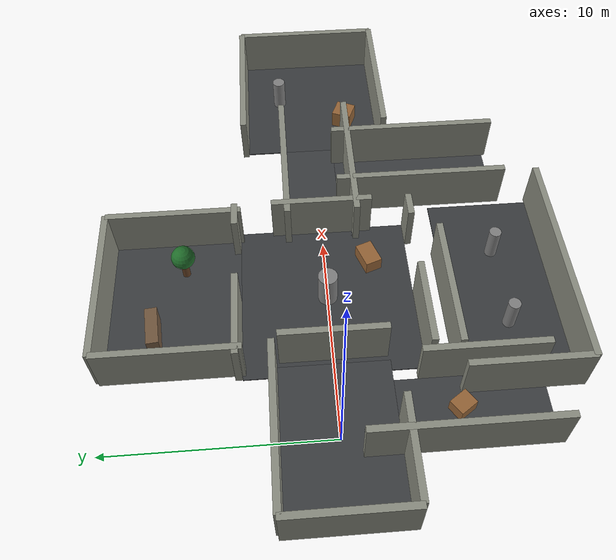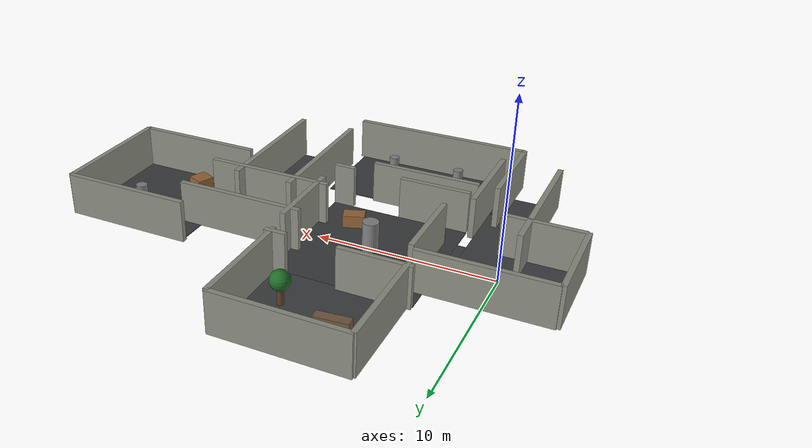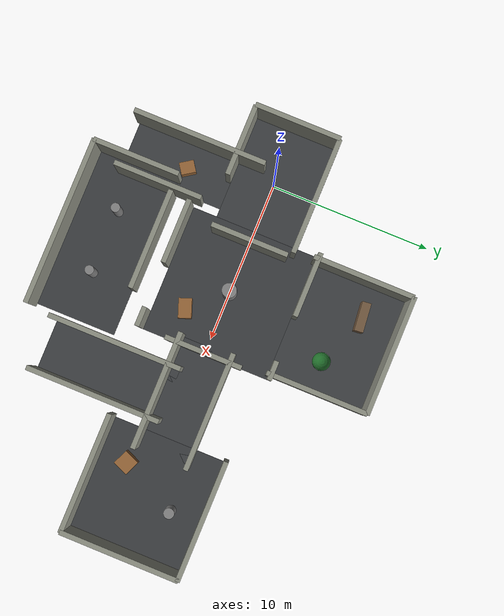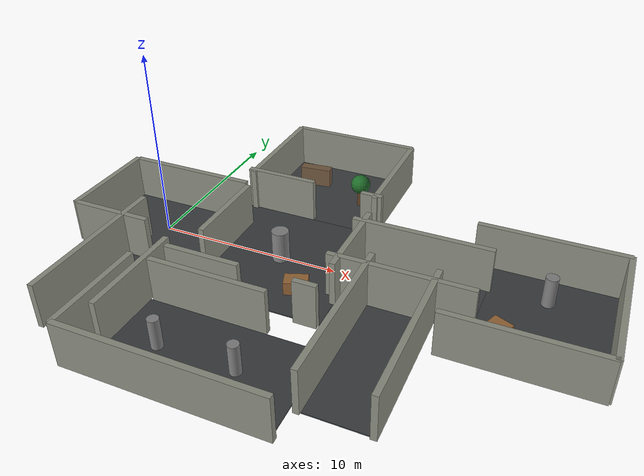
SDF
<?xml version="1.0" ?>
<sdf version="1.6">
  <world name="maps12_general_slam_benchmark">
    <physics name="default_physics" type="ode">
      <max_step_size>0.004</max_step_size>
      <real_time_factor>1.0</real_time_factor>
      <real_time_update_rate>250</real_time_update_rate>
    </physics>

    <scene>
      <ambient>0.56 0.58 0.60 1</ambient>
      <background>0.76 0.80 0.84 1</background>
      <shadows>true</shadows>
    </scene>

    <light name="sun" type="directional">
      <pose>0 0 14 0 0 0</pose>
      <diffuse>0.95 0.92 0.84 1</diffuse>
      <specular>0.18 0.18 0.18 1</specular>
      <direction>-0.35 0.25 -1</direction>
    </light>

    <model name="maps12_loop_room_corridor_layout">
      <static>true</static>

      <link name="entry_start_floor"><pose>0 0 -0.03 0 0 0</pose><collision name="c"><geometry><box><size>7 5 0.06</size></box></geometry></collision><visual name="v"><geometry><box><size>7 5 0.06</size></box></geometry><material><ambient>0.18 0.19 0.20 1</ambient><diffuse>0.23 0.24 0.25 1</diffuse></material></visual></link>
      <link name="central_atrium_floor"><pose>7 0 -0.03 0 0 0</pose><collision name="c"><geometry><box><size>8 8 0.06</size></box></geometry></collision><visual name="v"><geometry><box><size>8 8 0.06</size></box></geometry><material><ambient>0.17 0.18 0.19 1</ambient><diffuse>0.22 0.23 0.24 1</diffuse></material></visual></link>
      <link name="north_room_floor"><pose>7 7 -0.03 0 0 0</pose><collision name="c"><geometry><box><size>7 6 0.06</size></box></geometry></collision><visual name="v"><geometry><box><size>7 6 0.06</size></box></geometry><material><ambient>0.18 0.19 0.20 1</ambient><diffuse>0.23 0.24 0.25 1</diffuse></material></visual></link>
      <link name="east_corridor_floor"><pose>14 0 -0.03 0 0 0</pose><collision name="c"><geometry><box><size>7 3 0.06</size></box></geometry></collision><visual name="v"><geometry><box><size>7 3 0.06</size></box></geometry><material><ambient>0.18 0.19 0.20 1</ambient><diffuse>0.23 0.24 0.25 1</diffuse></material></visual></link>
      <link name="east_room_floor"><pose>20 0 -0.03 0 0 0</pose><collision name="c"><geometry><box><size>7 7 0.06</size></box></geometry></collision><visual name="v"><geometry><box><size>7 7 0.06</size></box></geometry><material><ambient>0.17 0.18 0.19 1</ambient><diffuse>0.22 0.23 0.24 1</diffuse></material></visual></link>
      <link name="south_corridor_floor"><pose>14 -5 -0.03 0 0 0</pose><collision name="c"><geometry><box><size>3 8 0.06</size></box></geometry></collision><visual name="v"><geometry><box><size>3 8 0.06</size></box></geometry><material><ambient>0.18 0.19 0.20 1</ambient><diffuse>0.23 0.24 0.25 1</diffuse></material></visual></link>
      <link name="south_room_floor"><pose>7 -8 -0.03 0 0 0</pose><collision name="c"><geometry><box><size>10 5 0.06</size></box></geometry></collision><visual name="v"><geometry><box><size>10 5 0.06</size></box></geometry><material><ambient>0.17 0.18 0.19 1</ambient><diffuse>0.22 0.23 0.24 1</diffuse></material></visual></link>
      <link name="west_return_corridor_floor"><pose>1 -5 -0.03 0 0 0</pose><collision name="c"><geometry><box><size>3 8 0.06</size></box></geometry></collision><visual name="v"><geometry><box><size>3 8 0.06</size></box></geometry><material><ambient>0.18 0.19 0.20 1</ambient><diffuse>0.23 0.24 0.25 1</diffuse></material></visual></link>

      <link name="outer_wall_west"><pose>-3.65 0 1.2 0 0 0</pose><collision name="c"><geometry><box><size>0.3 5.4 2.4</size></box></geometry></collision><visual name="v"><geometry><box><size>0.3 5.4 2.4</size></box></geometry><material><ambient>0.42 0.43 0.40 1</ambient><diffuse>0.54 0.55 0.50 1</diffuse></material></visual></link>
      <link name="outer_wall_entry_north"><pose>0 2.65 1.2 0 0 0</pose><collision name="c"><geometry><box><size>7.2 0.3 2.4</size></box></geometry></collision><visual name="v"><geometry><box><size>7.2 0.3 2.4</size></box></geometry><material><ambient>0.42 0.43 0.40 1</ambient><diffuse>0.54 0.55 0.50 1</diffuse></material></visual></link>
      <link name="outer_wall_entry_south_split"><pose>-1.4 -2.65 1.2 0 0 0</pose><collision name="c"><geometry><box><size>4.4 0.3 2.4</size></box></geometry></collision><visual name="v"><geometry><box><size>4.4 0.3 2.4</size></box></geometry><material><ambient>0.42 0.43 0.40 1</ambient><diffuse>0.54 0.55 0.50 1</diffuse></material></visual></link>

      <link name="atrium_wall_north_west"><pose>5.0 4.15 1.2 0 0 0</pose><collision name="c"><geometry><box><size>4.0 0.3 2.4</size></box></geometry></collision><visual name="v"><geometry><box><size>4.0 0.3 2.4</size></box></geometry><material><ambient>0.42 0.43 0.40 1</ambient><diffuse>0.54 0.55 0.50 1</diffuse></material></visual></link>
      <link name="atrium_wall_north_east"><pose>10.4 4.15 1.2 0 0 0</pose><collision name="c"><geometry><box><size>1.2 0.3 2.4</size></box></geometry></collision><visual name="v"><geometry><box><size>1.2 0.3 2.4</size></box></geometry><material><ambient>0.42 0.43 0.40 1</ambient><diffuse>0.54 0.55 0.50 1</diffuse></material></visual></link>
      <link name="atrium_wall_south_west"><pose>5.0 -4.15 1.2 0 0 0</pose><collision name="c"><geometry><box><size>4.0 0.3 2.4</size></box></geometry></collision><visual name="v"><geometry><box><size>4.0 0.3 2.4</size></box></geometry><material><ambient>0.42 0.43 0.40 1</ambient><diffuse>0.54 0.55 0.50 1</diffuse></material></visual></link>
      <link name="atrium_wall_south_east"><pose>10.4 -4.15 1.2 0 0 0</pose><collision name="c"><geometry><box><size>1.2 0.3 2.4</size></box></geometry></collision><visual name="v"><geometry><box><size>1.2 0.3 2.4</size></box></geometry><material><ambient>0.42 0.43 0.40 1</ambient><diffuse>0.54 0.55 0.50 1</diffuse></material></visual></link>
      <link name="atrium_inner_wall_left"><pose>3.85 0.0 1.2 0 0 0</pose><collision name="c"><geometry><box><size>0.3 4.8 2.4</size></box></geometry></collision><visual name="v"><geometry><box><size>0.3 4.8 2.4</size></box></geometry><material><ambient>0.42 0.43 0.40 1</ambient><diffuse>0.54 0.55 0.50 1</diffuse></material></visual></link>
      <link name="atrium_inner_wall_right"><pose>10.95 0.0 1.2 0 0 0</pose><collision name="c"><geometry><box><size>0.3 4.8 2.4</size></box></geometry></collision><visual name="v"><geometry><box><size>0.3 4.8 2.4</size></box></geometry><material><ambient>0.42 0.43 0.40 1</ambient><diffuse>0.54 0.55 0.50 1</diffuse></material></visual></link>

      <link name="north_room_wall_west"><pose>3.35 7 1.2 0 0 0</pose><collision name="c"><geometry><box><size>0.3 6.3 2.4</size></box></geometry></collision><visual name="v"><geometry><box><size>0.3 6.3 2.4</size></box></geometry><material><ambient>0.42 0.43 0.40 1</ambient><diffuse>0.54 0.55 0.50 1</diffuse></material></visual></link>
      <link name="north_room_wall_east"><pose>10.65 7 1.2 0 0 0</pose><collision name="c"><geometry><box><size>0.3 6.3 2.4</size></box></geometry></collision><visual name="v"><geometry><box><size>0.3 6.3 2.4</size></box></geometry><material><ambient>0.42 0.43 0.40 1</ambient><diffuse>0.54 0.55 0.50 1</diffuse></material></visual></link>
      <link name="north_room_wall_north"><pose>7 10.15 1.2 0 0 0</pose><collision name="c"><geometry><box><size>7.4 0.3 2.4</size></box></geometry></collision><visual name="v"><geometry><box><size>7.4 0.3 2.4</size></box></geometry><material><ambient>0.42 0.43 0.40 1</ambient><diffuse>0.54 0.55 0.50 1</diffuse></material></visual></link>

      <link name="east_corridor_wall_north"><pose>14 1.65 1.2 0 0 0</pose><collision name="c"><geometry><box><size>7.3 0.3 2.4</size></box></geometry></collision><visual name="v"><geometry><box><size>7.3 0.3 2.4</size></box></geometry><material><ambient>0.42 0.43 0.40 1</ambient><diffuse>0.54 0.55 0.50 1</diffuse></material></visual></link>
      <link name="east_corridor_wall_south"><pose>14 -1.65 1.2 0 0 0</pose><collision name="c"><geometry><box><size>7.3 0.3 2.4</size></box></geometry></collision><visual name="v"><geometry><box><size>7.3 0.3 2.4</size></box></geometry><material><ambient>0.42 0.43 0.40 1</ambient><diffuse>0.54 0.55 0.50 1</diffuse></material></visual></link>
      <link name="east_room_wall_north"><pose>20 3.65 1.2 0 0 0</pose><collision name="c"><geometry><box><size>7.4 0.3 2.4</size></box></geometry></collision><visual name="v"><geometry><box><size>7.4 0.3 2.4</size></box></geometry><material><ambient>0.42 0.43 0.40 1</ambient><diffuse>0.54 0.55 0.50 1</diffuse></material></visual></link>
      <link name="east_room_wall_south"><pose>20 -3.65 1.2 0 0 0</pose><collision name="c"><geometry><box><size>7.4 0.3 2.4</size></box></geometry></collision><visual name="v"><geometry><box><size>7.4 0.3 2.4</size></box></geometry><material><ambient>0.42 0.43 0.40 1</ambient><diffuse>0.54 0.55 0.50 1</diffuse></material></visual></link>
      <link name="east_room_wall_east"><pose>23.65 0 1.2 0 0 0</pose><collision name="c"><geometry><box><size>0.3 7.4 2.4</size></box></geometry></collision><visual name="v"><geometry><box><size>0.3 7.4 2.4</size></box></geometry><material><ambient>0.42 0.43 0.40 1</ambient><diffuse>0.54 0.55 0.50 1</diffuse></material></visual></link>

      <link name="south_corridor_wall_west"><pose>12.35 -5 1.2 0 0 0</pose><collision name="c"><geometry><box><size>0.3 8.3 2.4</size></box></geometry></collision><visual name="v"><geometry><box><size>0.3 8.3 2.4</size></box></geometry><material><ambient>0.42 0.43 0.40 1</ambient><diffuse>0.54 0.55 0.50 1</diffuse></material></visual></link>
      <link name="south_corridor_wall_east"><pose>15.65 -5 1.2 0 0 0</pose><collision name="c"><geometry><box><size>0.3 8.3 2.4</size></box></geometry></collision><visual name="v"><geometry><box><size>0.3 8.3 2.4</size></box></geometry><material><ambient>0.42 0.43 0.40 1</ambient><diffuse>0.54 0.55 0.50 1</diffuse></material></visual></link>
      <link name="south_room_wall_south"><pose>7 -10.65 1.2 0 0 0</pose><collision name="c"><geometry><box><size>10.4 0.3 2.4</size></box></geometry></collision><visual name="v"><geometry><box><size>10.4 0.3 2.4</size></box></geometry><material><ambient>0.42 0.43 0.40 1</ambient><diffuse>0.54 0.55 0.50 1</diffuse></material></visual></link>
      <link name="south_room_wall_north_split"><pose>6.0 -5.35 1.2 0 0 0</pose><collision name="c"><geometry><box><size>6.2 0.3 2.4</size></box></geometry></collision><visual name="v"><geometry><box><size>6.2 0.3 2.4</size></box></geometry><material><ambient>0.42 0.43 0.40 1</ambient><diffuse>0.54 0.55 0.50 1</diffuse></material></visual></link>
      <link name="south_room_wall_west"><pose>1.85 -8 1.2 0 0 0</pose><collision name="c"><geometry><box><size>0.3 5.4 2.4</size></box></geometry></collision><visual name="v"><geometry><box><size>0.3 5.4 2.4</size></box></geometry><material><ambient>0.42 0.43 0.40 1</ambient><diffuse>0.54 0.55 0.50 1</diffuse></material></visual></link>

      <link name="west_return_wall_west"><pose>-0.65 -5 1.2 0 0 0</pose><collision name="c"><geometry><box><size>0.3 8.3 2.4</size></box></geometry></collision><visual name="v"><geometry><box><size>0.3 8.3 2.4</size></box></geometry><material><ambient>0.42 0.43 0.40 1</ambient><diffuse>0.54 0.55 0.50 1</diffuse></material></visual></link>
      <link name="west_return_wall_east_split"><pose>2.65 -6.3 1.2 0 0 0</pose><collision name="c"><geometry><box><size>0.3 5.5 2.4</size></box></geometry></collision><visual name="v"><geometry><box><size>0.3 5.5 2.4</size></box></geometry><material><ambient>0.42 0.43 0.40 1</ambient><diffuse>0.54 0.55 0.50 1</diffuse></material></visual></link>
    </model>

    <model name="maps12_benchmark_obstacles">
      <static>true</static>
      <link name="atrium_center_column"><pose>7 0 0.85 0 0 0</pose><collision name="c"><geometry><cylinder><radius>0.45</radius><length>1.7</length></cylinder></geometry></collision><visual name="v"><geometry><cylinder><radius>0.45</radius><length>1.7</length></cylinder></geometry><material><ambient>0.35 0.35 0.35 1</ambient><diffuse>0.50 0.50 0.50 1</diffuse></material></visual></link>
      <link name="atrium_low_box"><pose>8.9 -2.1 0.35 0 0 0.35</pose><collision name="c"><geometry><box><size>1.2 0.8 0.7</size></box></geometry></collision><visual name="v"><geometry><box><size>1.2 0.8 0.7</size></box></geometry><material><ambient>0.45 0.30 0.16 1</ambient><diffuse>0.58 0.39 0.21 1</diffuse></material></visual></link>
      <link name="north_shelf"><pose>5.4 7.9 0.55 0 0 0.1</pose><collision name="c"><geometry><box><size>1.8 0.55 1.1</size></box></geometry></collision><visual name="v"><geometry><box><size>1.8 0.55 1.1</size></box></geometry><material><ambient>0.32 0.25 0.18 1</ambient><diffuse>0.44 0.34 0.24 1</diffuse></material></visual></link>
      <link name="north_tree_trunk"><pose>8.8 6.6 0.55 0 0 0</pose><collision name="c"><geometry><cylinder><radius>0.18</radius><length>1.1</length></cylinder></geometry></collision><visual name="v"><geometry><cylinder><radius>0.18</radius><length>1.1</length></cylinder></geometry><material><ambient>0.30 0.18 0.10 1</ambient><diffuse>0.38 0.24 0.13 1</diffuse></material></visual></link>
      <link name="north_tree_crown"><pose>8.8 6.6 1.35 0 0 0</pose><collision name="c"><geometry><sphere><radius>0.55</radius></sphere></geometry></collision><visual name="v"><geometry><sphere><radius>0.55</radius></sphere></geometry><material><ambient>0.08 0.26 0.10 1</ambient><diffuse>0.12 0.42 0.16 1</diffuse></material></visual></link>
      <link name="east_room_pillar"><pose>20.4 1.7 0.8 0 0 0</pose><collision name="c"><geometry><cylinder><radius>0.32</radius><length>1.6</length></cylinder></geometry></collision><visual name="v"><geometry><cylinder><radius>0.32</radius><length>1.6</length></cylinder></geometry><material><ambient>0.35 0.35 0.35 1</ambient><diffuse>0.50 0.50 0.50 1</diffuse></material></visual></link>
      <link name="east_room_crate"><pose>18.7 -1.8 0.45 0 0 -0.4</pose><collision name="c"><geometry><box><size>1.0 1.0 0.9</size></box></geometry></collision><visual name="v"><geometry><box><size>1.0 1.0 0.9</size></box></geometry><material><ambient>0.45 0.30 0.16 1</ambient><diffuse>0.58 0.39 0.21 1</diffuse></material></visual></link>
      <link name="south_room_column_1"><pose>5.0 -8.1 0.8 0 0 0</pose><collision name="c"><geometry><cylinder><radius>0.28</radius><length>1.6</length></cylinder></geometry></collision><visual name="v"><geometry><cylinder><radius>0.28</radius><length>1.6</length></cylinder></geometry><material><ambient>0.35 0.35 0.35 1</ambient><diffuse>0.50 0.50 0.50 1</diffuse></material></visual></link>
      <link name="south_room_column_2"><pose>9.0 -8.1 0.8 0 0 0</pose><collision name="c"><geometry><cylinder><radius>0.28</radius><length>1.6</length></cylinder></geometry></collision><visual name="v"><geometry><cylinder><radius>0.28</radius><length>1.6</length></cylinder></geometry><material><ambient>0.35 0.35 0.35 1</ambient><diffuse>0.50 0.50 0.50 1</diffuse></material></visual></link>
      <link name="return_corridor_box"><pose>1.0 -5.2 0.32 0 0 0.6</pose><collision name="c"><geometry><box><size>0.75 0.9 0.65</size></box></geometry></collision><visual name="v"><geometry><box><size>0.75 0.9 0.65</size></box></geometry><material><ambient>0.45 0.30 0.16 1</ambient><diffuse>0.58 0.39 0.21 1</diffuse></material></visual></link>
    </model>
  </world>
</sdf>
